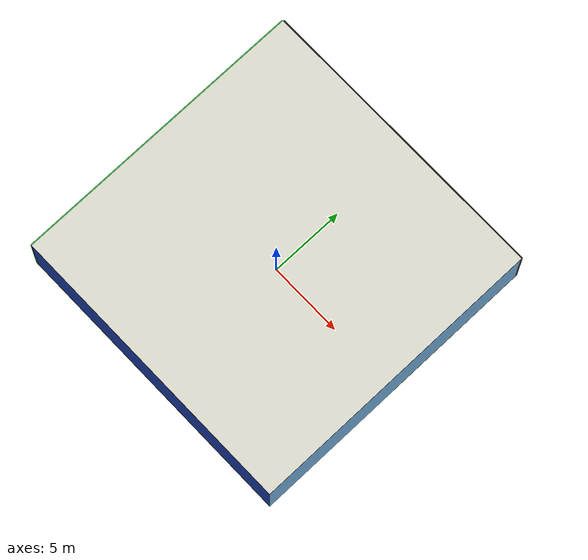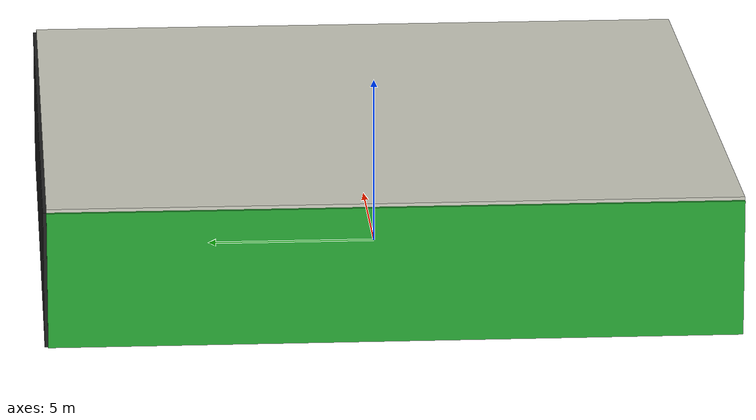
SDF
<sdf version="1.4">
 <world name="default">
  <physics type="ode">
   <max_step_size>0.001</max_step_size>
   <real_time_factor>1</real_time_factor>
   <real_time_update_rate>1000</real_time_update_rate>
   <gravity>0 0 -9.8</gravity>
  </physics>
  <scene><ambient>0.4 0.4 0.4 1</ambient><background>0.7 0.7 0.7 1</background><shadows>1</shadows></scene>
  <model name="Surrounding">
   <static>1</static>
   <link name="Ceiling">
    <collision name="Ceiling_Collision"><geometry><box><size>20 20 0.1</size></box></geometry></collision>
    <visual name="Ceiling_Visual">
     <geometry><box><size>20 20 0.1</size></box></geometry>
     <material>
      <script><uri>file://media/materials/scripts/gazebo.material</uri><name>Gazebo/PaintedWall</name></script>
     </material>
    </visual>
    <pose>0 0 4.05 0 0 0</pose>
   </link>
   <link name="Wall_South">
    <collision name="Wall_South_Collision">
     <geometry><box><size>20 0 4</size></box></geometry>
     <pose>0 0 2 0 -0 0</pose>
    </collision>
    <visual name="Wall_South_Visual">
     <pose>0 0 2 0 -0 0</pose>
     <geometry><box><size>20 0 4</size></box></geometry>
     <material>
      <script><uri>file://media/materials/scripts/gazebo.material</uri><name>Gazebo/BlueLaser</name></script>
     </material>
    </visual>
    <velocity_decay><linear>0</linear><angular>0</angular></velocity_decay>
    <pose>0 -10 0 0 -0 0</pose>
   </link>
   <link name="Wall_East">
    <collision name="Wall_21_Collision">
     <geometry><box><size>20 0 4</size></box></geometry>
     <pose>0 0 2 0 -0 0</pose>
    </collision>
    <visual name="Wall_21_Visual">
     <pose>0 0 2 0 -0 0</pose>
     <geometry><box><size>20 0 4</size></box></geometry>
     <material>
      <script><uri>file://media/materials/scripts/gazebo.material</uri><name>Gazebo/SkyBlue</name></script>
     </material>
    </visual>
    <velocity_decay><linear>0</linear><angular>0</angular></velocity_decay>
    <pose>10 0 0 0 -0 1.5708</pose>
   </link>
   <link name="Wall_North">
    <collision name="Wall_22_Collision">
     <geometry><box><size>20 0.2 4</size></box></geometry>
     <pose>0 0 2 0 -0 0</pose>
    </collision>
    <visual name="Wall_22_Visual">
     <pose>0 0 2 0 -0 0</pose>
     <geometry><box><size>20 0.2 4</size></box></geometry>
     <material>
      <script><uri>file://media/materials/scripts/gazebo.material</uri><name>Gazebo/FlatBlack</name></script>
     </material>
    </visual>
    <velocity_decay><linear>0</linear><angular>0</angular></velocity_decay>
    <pose>0 10 0 0 -0 0</pose>
   </link>
   <link name="Wall_West">
    <collision name="Wall_23_Collision">
     <geometry><box><size>20 0.2 4</size></box></geometry>
     <pose>0 0 2 0 -0 0</pose>
    </collision>
    <visual name="Wall_23_Visual">
     <pose>0 0 2 0 -0 0</pose>
     <geometry><box><size>20 0.2 4</size></box></geometry>
     <material>
      <script><uri>file://media/materials/scripts/gazebo.material</uri><name>Gazebo/GreenGlow</name></script>
     </material>
    </visual>
    <velocity_decay><linear>0</linear><angular>0</angular></velocity_decay>
    <pose>-10 0 0 0 0 -1.5708</pose>
   </link>
   <link name="Ground_link">
    <collision name="collision">
     <pose>0 0 .05 0 -0 0</pose>
     <geometry><box><size>20 20 0.1</size></box></geometry>
    </collision>
    <visual name="visual">
     <pose>0 0 .05 0 -0 0</pose>
     <geometry><box><size>20 20 0.1</size></box></geometry>
     <material>
      <script><uri>file://media/materials/scripts/gazebo.material</uri><name>Gazebo/Yellow</name></script>
     </material>
    </visual>
   </link>
   <static>1</static>
  </model>
  <spherical_coordinates>
   <surface_model>EARTH_WGS84</surface_model>
   <latitude_deg>0</latitude_deg>
   <longitude_deg>0</longitude_deg>
   <elevation>0</elevation>
   <heading_deg>0</heading_deg>
  </spherical_coordinates>
  <light name="lightball_0" type="diffuse">
   <diffuse>0.8 0.8 0.8 1</diffuse>
   <specular>0.2 0.2 0.2 1</specular>
   <attenuation>
    <range>100</range>
    <constant>0.7</constant>
    <linear>0.01</linear>
    <quadratic>0.001</quadratic>
   </attenuation>
   <direction>-0.5 0.1 -0.9</direction>
   <pose>-7.81429478343 6.14609841576 3.58328459938 0 0 0</pose>
  </light>
  <light name="lightball_1" type="diffuse">
   <diffuse>0.8 0.8 0.8 1</diffuse>
   <specular>0.2 0.2 0.2 1</specular>
   <attenuation>
    <range>100</range>
    <constant>0.7</constant>
    <linear>0.01</linear>
    <quadratic>0.001</quadratic>
   </attenuation>
   <direction>-0.5 0.1 -0.9</direction>
   <pose>-5.88505870055 -1.91384197236 1.47313103565 0 0 0</pose>
  </light>
  <light name="lightball_2" type="diffuse">
   <diffuse>0.8 0.8 0.8 1</diffuse>
   <specular>0.2 0.2 0.2 1</specular>
   <attenuation>
    <range>100</range>
    <constant>0.7</constant>
    <linear>0.01</linear>
    <quadratic>0.001</quadratic>
   </attenuation>
   <direction>-0.5 0.1 -0.9</direction>
   <pose>-2.99092133898 2.24298226612 0.923063584979 0 0 0</pose>
  </light>
  <light name="lightball_3" type="diffuse">
   <diffuse>0.8 0.8 0.8 1</diffuse>
   <specular>0.2 0.2 0.2 1</specular>
   <attenuation>
    <range>100</range>
    <constant>0.7</constant>
    <linear>0.01</linear>
    <quadratic>0.001</quadratic>
   </attenuation>
   <direction>-0.5 0.1 -0.9</direction>
   <pose>6.95459163909 0.489939997555 2.74901367574 0 0 0</pose>
  </light>
  <include><uri>model://cabinet</uri><pose>-8.39185716871 -8.05847475581 0 0 0 2.86569414099</pose></include>
  <include>
   <uri>model://construction_cone</uri>
   <pose>-7.67475755262 5.66108413174 0 0 0 3.12245730679</pose>
  </include>
  <include>
   <uri>model://construction_cone</uri>
   <pose>-5.26714101162 7.30713227268 0 0 0 1.91035236022</pose>
  </include>
  <include><uri>model://table</uri><pose>2.18468689541 2.40517025984 0 0 0 1.98600373491</pose></include>
  <include><uri>model://cabinet</uri><pose>6.54897671372 -4.11650509528 0 0 0 0.384596094796</pose></include>
 </world>
</sdf>

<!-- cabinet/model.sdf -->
<sdf version="1.5">
  <model name="cabinet">
    <static>true</static>
    <link name="cabinet_bottom_plate">
      <inertial>
        <pose>0 0 -1 0 0 0</pose>
        <inertia>
          <ixx>2.050000</ixx>
          <ixy>0</ixy>
          <ixz>0</ixz>
          <iyy>2.050000</iyy>
          <iyz>0</iyz>
          <izz>2.050000</izz>
        </inertia>
        <mass>25.000000</mass>
      </inertial>
      <collision name="cabinet_bottom_plate_geom">
        <pose>0 0 0.010000 0 0 0</pose>
        <geometry>
          <box>
            <size>0.450000 0.450000 0.020000</size>
          </box>
        </geometry>
      </collision>
      <visual name="cabinet_bottom_plate_geom_visual">
        <pose>0 0 0.010000 0 0 0</pose>
        <geometry>
          <box>
            <size>0.450000 0.450000 0.020000</size>
          </box>
        </geometry>
        <material>
          <script>
            <uri>model://media/materials/scripts/gazebo.material</uri>
            <name>Gazebo/Wood</name>
          </script>
        </material>
      </visual>
      <collision name="cabinet_bottom_plate_geom_cabinet_back_plate">
        <pose>0.235000 0 0.510000 0 0 0</pose>
        <geometry>
          <box>
            <size>0.020000 0.450000 1.020000</size>
          </box>
        </geometry>
      </collision>
      <visual name="cabinet_bottom_plate_geom_cabinet_back_plate_visual">
        <pose>0.235000 0 0.510000 0 0 0</pose>
        <geometry>
          <box>
            <size>0.020000 0.450000 1.020000</size>
          </box>
        </geometry>
        <material>
          <script>
            <uri>model://media/materials/scripts/gazebo.material</uri>
            <name>Gazebo/Wood</name>
          </script>
        </material>
      </visual>
      <collision name="cabinet_bottom_plate_geom_cabinet_left_plate">
        <pose>0 0.235000 0.510000 0 0 0</pose>
        <geometry>
          <box>
            <size>0.450000 0.020000 1.020000</size>
          </box>
        </geometry>
      </collision>
      <visual name="cabinet_bottom_plate_geom_cabinet_left_plate_visual">
        <pose>0 0.235000 0.510000 0 0 0</pose>
        <geometry>
          <box>
            <size>0.450000 0.020000 1.020000</size>
          </box>
        </geometry>
        <material>
          <script>
            <uri>model://media/materials/scripts/gazebo.material</uri>
            <name>Gazebo/Wood</name>
          </script>
        </material>
      </visual>
      <collision name="cabinet_bottom_plate_geom_cabinet_middle_plate">
        <pose>0 0 0.510000 0 0 0</pose>
        <geometry>
          <box>
            <size>0.450000 0.450000 0.020000</size>
          </box>
        </geometry>
      </collision>
      <visual name="cabinet_bottom_plate_geom_cabinet_middle_plate_visual">
        <pose>0 0 0.510000 0 0 0</pose>
        <geometry>
          <box>
            <size>0.450000 0.450000 0.020000</size>
          </box>
        </geometry>
        <material>
          <script>
            <uri>model://media/materials/scripts/gazebo.material</uri>
            <name>Gazebo/Wood</name>
          </script>
        </material>
      </visual>
      <collision name="cabinet_bottom_plate_geom_cabinet_right_plate">
        <pose>0 -0.235000 0.510000 0 0 0</pose>
        <geometry>
          <box>
            <size>0.450000 0.020000 1.020000</size>
          </box>
        </geometry>
      </collision>
      <visual name="cabinet_bottom_plate_geom_cabinet_right_plate_visual">
        <pose>0 -0.235000 0.510000 0 0 0</pose>
        <geometry>
          <box>
            <size>0.450000 0.020000 1.020000</size>
          </box>
        </geometry>
        <material>
          <script>
            <uri>model://media/materials/scripts/gazebo.material</uri>
            <name>Gazebo/Wood</name>
          </script>
        </material>
      </visual>
      <collision name="cabinet_bottom_plate_geom_cabinet_top_plate">
        <pose>0 0 1.010000 0 0 0</pose>
        <geometry>
          <box>
            <size>0.450000 0.450000 0.020000</size>
          </box>
        </geometry>
      </collision>
      <visual name="cabinet_bottom_plate_geom_cabinet_top_plate_visual">
        <pose>0 0 1.010000 0 0 0</pose>
        <geometry>
          <box>
            <size>0.450000 0.450000 0.020000</size>
          </box>
        </geometry>
        <material>
          <script>
            <uri>model://media/materials/scripts/gazebo.material</uri>
            <name>Gazebo/Wood</name>
          </script>
        </material>
      </visual>
    </link>
  </model>
</sdf>

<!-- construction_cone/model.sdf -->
<sdf version="1.5">
  <model name="Construction Cone">
    <link name="link">
      <collision name="collision">
        <geometry>
          <mesh>
            <scale>10 10 10</scale>
            <uri>file://isr-testbed/construction_cone/meshes/construction_cone.dae</uri>
          </mesh>
        </geometry>
      </collision>
      <visual name="visual">
        <geometry>
          <mesh>
            <scale>10 10 10</scale>
            <uri>file://isr-testbed/construction_cone/meshes/construction_cone.dae</uri>
          </mesh>
        </geometry>
      </visual>
    </link>
  </model>
</sdf>

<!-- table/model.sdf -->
<sdf version="1.5">
  <model name="table">
    <static>true</static>
    <link name="link">
      <collision name="surface">
        <pose>0 0 1.0 0 0 0</pose>
        <geometry>
          <box>
            <size>1.5 0.8 0.03</size>
          </box>
        </geometry>
        <surface>
          <friction>
            <ode>
              <mu>0.6</mu>
              <mu2>0.6</mu2>
            </ode>
          </friction>
        </surface>
      </collision>
      <visual name="visual1">
        <pose>0 0 1.0 0 0 0</pose>
        <geometry>
          <box>
            <size>1.5 0.8 0.03</size>
          </box>
        </geometry>
        <material>
          <script>
            <uri>model://media/materials/scripts/gazebo.material</uri>
            <name>Gazebo/Wood</name>
          </script>
        </material>
      </visual>
      <collision name="front_left_leg">
        <pose>0.68 0.38 0.5 0 0 0</pose>
        <geometry>
          <cylinder>
            <radius>0.02</radius>
            <length>1.0</length>
          </cylinder>
        </geometry>
      </collision>
      <visual name="front_left_leg">
        <pose>0.68 0.38 0.5 0 0 0</pose>
        <geometry>
          <cylinder>
            <radius>0.02</radius>
            <length>1.0</length>
          </cylinder>
        </geometry>
        <material>
          <script>
            <uri>model://media/materials/scripts/gazebo.material</uri>
            <name>Gazebo/Grey</name>
          </script>
        </material>
      </visual>
      <collision name="front_right_leg">
        <pose>0.68 -0.38 0.5 0 0 0</pose>
        <geometry>
          <cylinder>
            <radius>0.02</radius>
            <length>1.0</length>
          </cylinder>
        </geometry>
      </collision>
      <visual name="front_right_leg">
        <pose>0.68 -0.38 0.5 0 0 0</pose>
        <geometry>
          <cylinder>
            <radius>0.02</radius>
            <length>1.0</length>
          </cylinder>
        </geometry>
        <material>
          <script>
            <uri>model://media/materials/scripts/gazebo.material</uri>
            <name>Gazebo/Grey</name>
          </script>
        </material>
      </visual>
      <collision name="back_right_leg">
        <pose>-0.68 -0.38 0.5 0 0 0</pose>
        <geometry>
          <cylinder>
            <radius>0.02</radius>
            <length>1.0</length>
          </cylinder>
        </geometry>
      </collision>
      <visual name="back_right_leg">
        <pose>-0.68 -0.38 0.5 0 0 0</pose>
        <geometry>
          <cylinder>
            <radius>0.02</radius>
            <length>1.0</length>
          </cylinder>
        </geometry>
        <material>
          <script>
            <uri>model://media/materials/scripts/gazebo.material</uri>
            <name>Gazebo/Grey</name>
          </script>
        </material>
      </visual>
      <collision name="back_left_leg">
        <pose>-0.68 0.38 0.5 0 0 0</pose>
        <geometry>
          <cylinder>
            <radius>0.02</radius>
            <length>1.0</length>
          </cylinder>
        </geometry>
      </collision>
      <visual name="back_left_leg">
        <pose>-0.68 0.38 0.5 0 0 0</pose>
        <geometry>
          <cylinder>
            <radius>0.02</radius>
            <length>1.0</length>
          </cylinder>
        </geometry>
        <material>
          <script>
            <uri>model://media/materials/scripts/gazebo.material</uri>
            <name>Gazebo/Grey</name>
          </script>
        </material>
      </visual>
    </link>
  </model>
</sdf>
